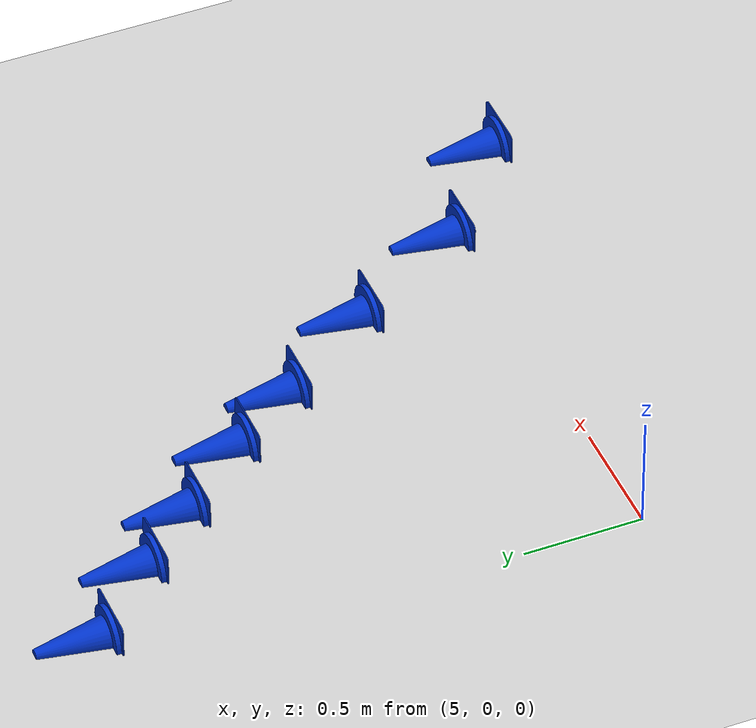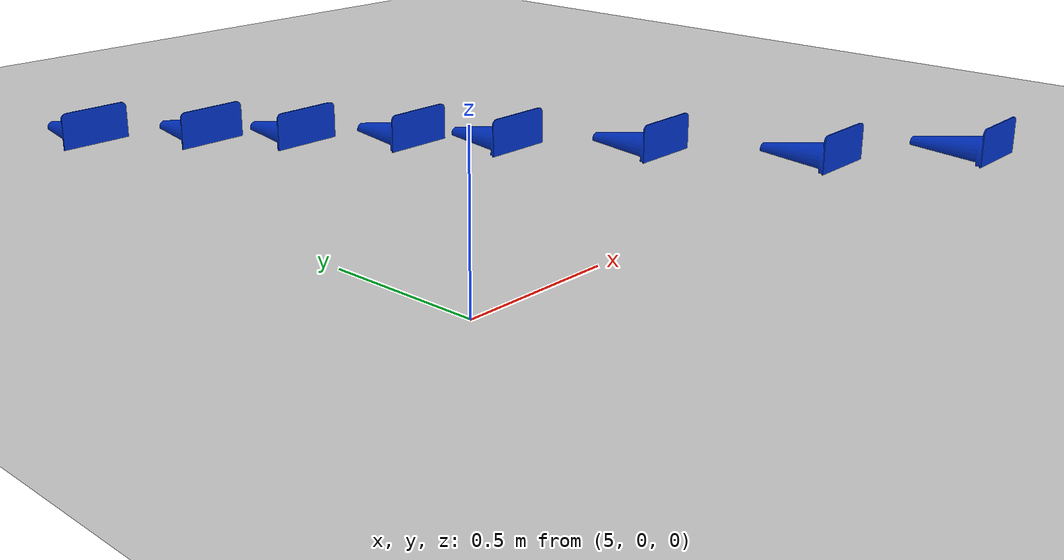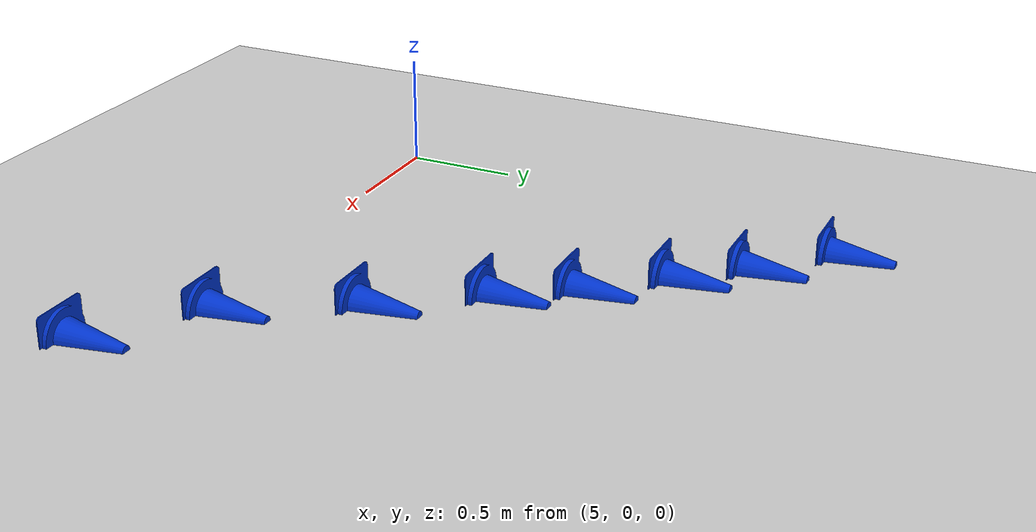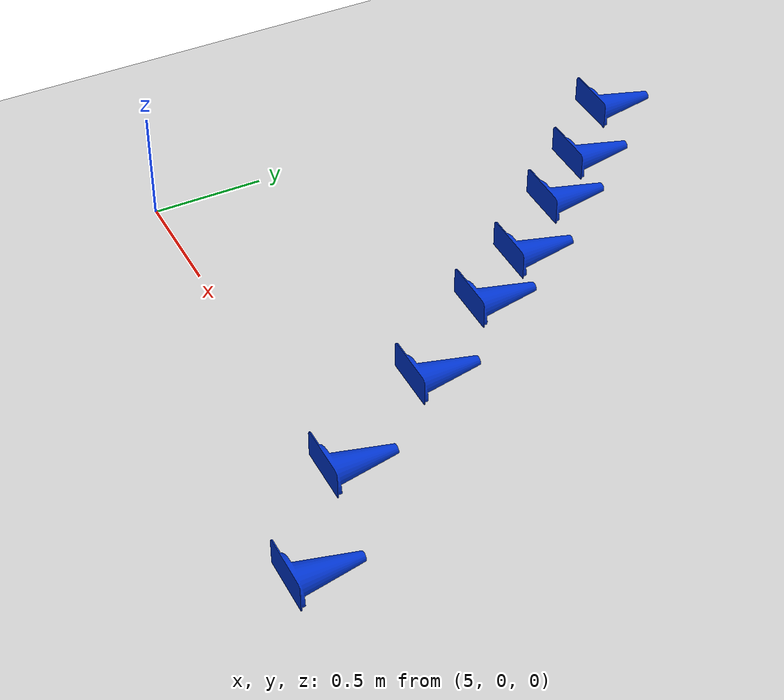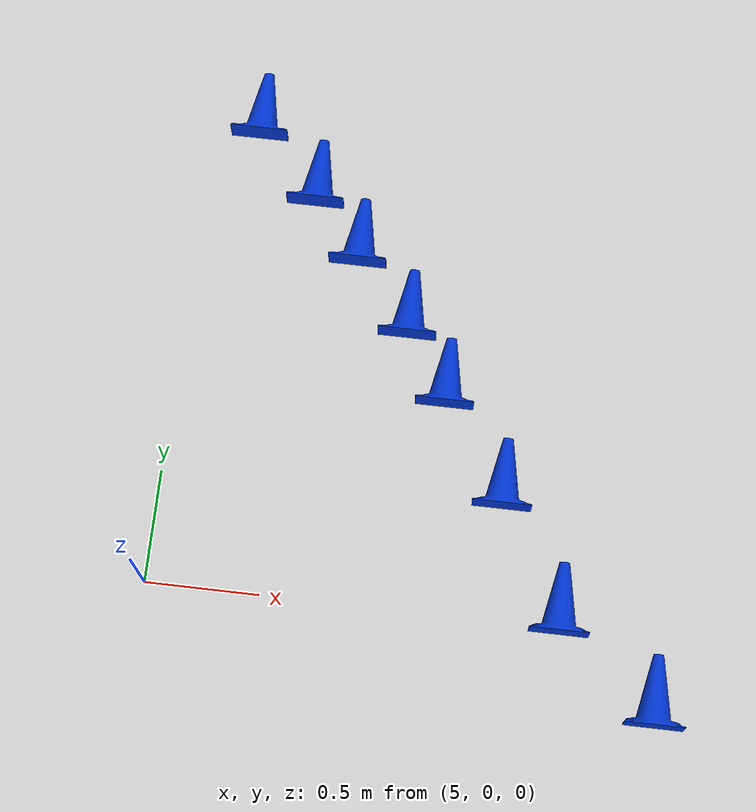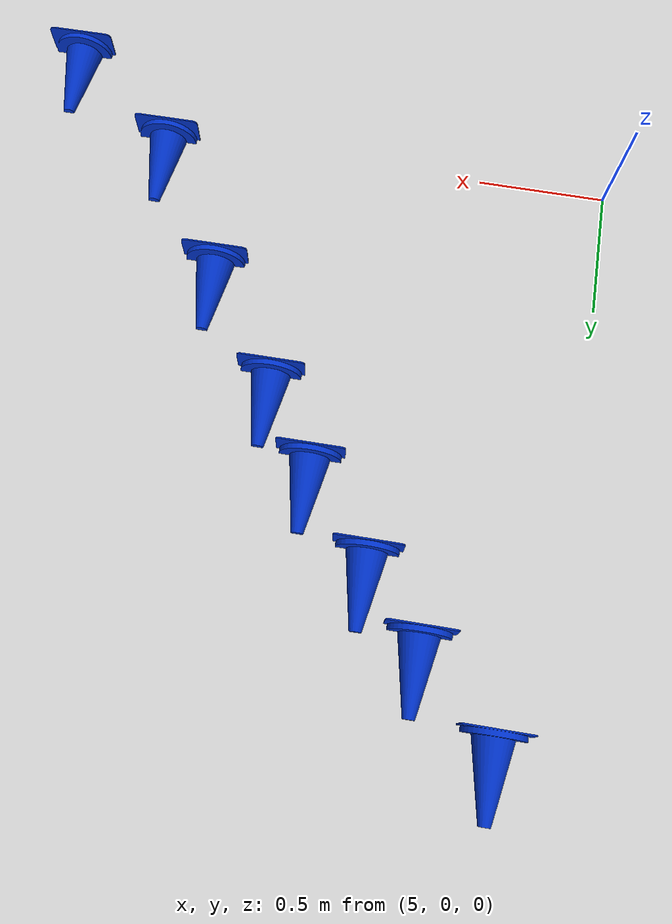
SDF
<sdf version="1.7">
 <world name="default">
  <model name="ground_plane">
   <static>1</static>
   <link name="link">
    <collision name="collision">
     <geometry><plane><normal>0 0 1</normal><size>100 100</size></plane></geometry>
     <surface><friction><ode><mu>100</mu><mu2>50</mu2></ode></friction></surface>
    </collision>
    <visual name="visual">
     <cast_shadows>0</cast_shadows>
     <geometry><plane><normal>0 0 1</normal><size>100 100</size></plane></geometry>
     <material>
      <script><uri>file://media/materials/scripts/gazebo.material</uri><name>Gazebo/Grey</name></script>
     </material>
    </visual>
   </link>
  </model>
  <model name="cone_yellow_24">
   <static>1</static>
   <link name="link">
    <visual name="visual">
     <geometry>
      <mesh><uri>model://cone_yellow/meshes/cone.stl</uri><scale>0.001 0.001 0.001</scale></mesh>
     </geometry>
     <material><ambient>1 0.82 0 1</ambient><diffuse>1 0.82 0 1</diffuse></material>
    </visual>
    <collision name="collision">
     <geometry>
      <mesh><uri>model://cone_yellow/meshes/cone.stl</uri><scale>0.001 0.001 0.001</scale></mesh>
     </geometry>
    </collision>
    <inertial>
     <mass>0.1</mass>
     <inertia><ixx>0.0001</ixx><iyy>0.0001</iyy><izz>0.0001</izz><ixy>0</ixy><ixz>0</ixz><iyz>0</iyz></inertia>
    </inertial>
   </link>
   <pose>5.1515 0.596885 0 0 -0 0</pose>
  </model>
  <model name="cone_yellow_25">
   <static>1</static>
   <link name="link">
    <visual name="visual">
     <geometry>
      <mesh><uri>model://cone_yellow/meshes/cone.stl</uri><scale>0.001 0.001 0.001</scale></mesh>
     </geometry>
     <material><ambient>1 0.82 0 1</ambient><diffuse>1 0.82 0 1</diffuse></material>
    </visual>
    <collision name="collision">
     <geometry>
      <mesh><uri>model://cone_yellow/meshes/cone.stl</uri><scale>0.001 0.001 0.001</scale></mesh>
     </geometry>
    </collision>
    <inertial>
     <mass>0.1</mass>
     <inertia><ixx>0.0001</ixx><iyy>0.0001</iyy><izz>0.0001</izz><ixy>0</ixy><ixz>0</ixz><iyz>0</iyz></inertia>
    </inertial>
   </link>
   <pose>5.49886 0.240595 0 0 -0 0</pose>
  </model>
  <model name="cone_blue_27">
   <static>1</static>
   <link name="link">
    <visual name="visual">
     <geometry><mesh><uri>model://cone_blue/meshes/cone.stl</uri><scale>0.001 0.001 0.001</scale></mesh></geometry>
     <material><ambient>0 0.2 0.8 1</ambient><diffuse>0 0.2 0.8 1</diffuse></material>
    </visual>
    <collision name="collision">
     <geometry><mesh><uri>model://cone_blue/meshes/cone.stl</uri><scale>0.001 0.001 0.001</scale></mesh></geometry>
    </collision>
    <inertial>
     <mass>0.1</mass>
     <inertia><ixx>0.0001</ixx><iyy>0.0001</iyy><izz>0.0001</izz><ixy>0</ixy><ixz>0</ixz><iyz>0</iyz></inertia>
    </inertial>
   </link>
   <pose>5.21867 2.13742 0 0 -0 0</pose>
  </model>
  <model name="cone_blue_28">
   <static>1</static>
   <link name="link">
    <visual name="visual">
     <geometry><mesh><uri>model://cone_blue/meshes/cone.stl</uri><scale>0.001 0.001 0.001</scale></mesh></geometry>
     <material><ambient>0 0.2 0.8 1</ambient><diffuse>0 0.2 0.8 1</diffuse></material>
    </visual>
    <collision name="collision">
     <geometry><mesh><uri>model://cone_blue/meshes/cone.stl</uri><scale>0.001 0.001 0.001</scale></mesh></geometry>
    </collision>
    <inertial>
     <mass>0.1</mass>
     <inertia><ixx>0.0001</ixx><iyy>0.0001</iyy><izz>0.0001</izz><ixy>0</ixy><ixz>0</ixz><iyz>0</iyz></inertia>
    </inertial>
   </link>
   <pose>5.51371 1.83791 0 0 -0 0</pose>
  </model>
  <model name="cone_blue_29">
   <static>1</static>
   <link name="link">
    <visual name="visual">
     <geometry><mesh><uri>model://cone_blue/meshes/cone.stl</uri><scale>0.001 0.001 0.001</scale></mesh></geometry>
     <material><ambient>0 0.2 0.8 1</ambient><diffuse>0 0.2 0.8 1</diffuse></material>
    </visual>
    <collision name="collision">
     <geometry><mesh><uri>model://cone_blue/meshes/cone.stl</uri><scale>0.001 0.001 0.001</scale></mesh></geometry>
    </collision>
    <inertial>
     <mass>0.1</mass>
     <inertia><ixx>0.0001</ixx><iyy>0.0001</iyy><izz>0.0001</izz><ixy>0</ixy><ixz>0</ixz><iyz>0</iyz></inertia>
    </inertial>
   </link>
   <pose>5.73875 1.57462 0 0 -0 0</pose>
  </model>
  <model name="cone_blue_30">
   <static>1</static>
   <link name="link">
    <visual name="visual">
     <geometry><mesh><uri>model://cone_blue/meshes/cone.stl</uri><scale>0.001 0.001 0.001</scale></mesh></geometry>
     <material><ambient>0 0.2 0.8 1</ambient><diffuse>0 0.2 0.8 1</diffuse></material>
    </visual>
    <collision name="collision">
     <geometry><mesh><uri>model://cone_blue/meshes/cone.stl</uri><scale>0.001 0.001 0.001</scale></mesh></geometry>
    </collision>
    <inertial>
     <mass>0.1</mass>
     <inertia><ixx>0.0001</ixx><iyy>0.0001</iyy><izz>0.0001</izz><ixy>0</ixy><ixz>0</ixz><iyz>0</iyz></inertia>
    </inertial>
   </link>
   <pose>5.99994 1.26024 0 0 -0 0</pose>
  </model>
  <model name="cone_blue_31">
   <static>1</static>
   <link name="link">
    <visual name="visual">
     <geometry><mesh><uri>model://cone_blue/meshes/cone.stl</uri><scale>0.001 0.001 0.001</scale></mesh></geometry>
     <material><ambient>0 0.2 0.8 1</ambient><diffuse>0 0.2 0.8 1</diffuse></material>
    </visual>
    <collision name="collision">
     <geometry><mesh><uri>model://cone_blue/meshes/cone.stl</uri><scale>0.001 0.001 0.001</scale></mesh></geometry>
    </collision>
    <inertial>
     <mass>0.1</mass>
     <inertia><ixx>0.0001</ixx><iyy>0.0001</iyy><izz>0.0001</izz><ixy>0</ixy><ixz>0</ixz><iyz>0</iyz></inertia>
    </inertial>
   </link>
   <pose>6.20111 0.959512 0 0 -0 0</pose>
  </model>
  <model name="cone_blue_32">
   <static>1</static>
   <link name="link">
    <visual name="visual">
     <geometry><mesh><uri>model://cone_blue/meshes/cone.stl</uri><scale>0.001 0.001 0.001</scale></mesh></geometry>
     <material><ambient>0 0.2 0.8 1</ambient><diffuse>0 0.2 0.8 1</diffuse></material>
    </visual>
    <collision name="collision">
     <geometry><mesh><uri>model://cone_blue/meshes/cone.stl</uri><scale>0.001 0.001 0.001</scale></mesh></geometry>
    </collision>
    <inertial>
     <mass>0.1</mass>
     <inertia><ixx>0.0001</ixx><iyy>0.0001</iyy><izz>0.0001</izz><ixy>0</ixy><ixz>0</ixz><iyz>0</iyz></inertia>
    </inertial>
   </link>
   <pose>6.50077 0.528082 0 0 -0 0</pose>
  </model>
  <model name="cone_blue_33">
   <static>1</static>
   <link name="link">
    <visual name="visual">
     <geometry><mesh><uri>model://cone_blue/meshes/cone.stl</uri><scale>0.001 0.001 0.001</scale></mesh></geometry>
     <material><ambient>0 0.2 0.8 1</ambient><diffuse>0 0.2 0.8 1</diffuse></material>
    </visual>
    <collision name="collision">
     <geometry><mesh><uri>model://cone_blue/meshes/cone.stl</uri><scale>0.001 0.001 0.001</scale></mesh></geometry>
    </collision>
    <inertial>
     <mass>0.1</mass>
     <inertia><ixx>0.0001</ixx><iyy>0.0001</iyy><izz>0.0001</izz><ixy>0</ixy><ixz>0</ixz><iyz>0</iyz></inertia>
    </inertial>
   </link>
   <pose>6.80171 0.003294 0 0 -0 0</pose>
  </model>
  <model name="cone_blue_34">
   <static>1</static>
   <link name="link">
    <visual name="visual">
     <geometry><mesh><uri>model://cone_blue/meshes/cone.stl</uri><scale>0.001 0.001 0.001</scale></mesh></geometry>
     <material><ambient>0 0.2 0.8 1</ambient><diffuse>0 0.2 0.8 1</diffuse></material>
    </visual>
    <collision name="collision">
     <geometry><mesh><uri>model://cone_blue/meshes/cone.stl</uri><scale>0.001 0.001 0.001</scale></mesh></geometry>
    </collision>
    <inertial>
     <mass>0.1</mass>
     <inertia><ixx>0.0001</ixx><iyy>0.0001</iyy><izz>0.0001</izz><ixy>0</ixy><ixz>0</ixz><iyz>0</iyz></inertia>
    </inertial>
   </link>
   <pose>7.24182 -0.35107 0 0 -0 0</pose>
  </model>
  <model name="cone_yellow_26">
   <static>1</static>
   <link name="link">
    <visual name="visual">
     <geometry>
      <mesh><uri>model://cone_yellow/meshes/cone.stl</uri><scale>0.001 0.001 0.001</scale></mesh>
     </geometry>
     <material><ambient>1 0.82 0 1</ambient><diffuse>1 0.82 0 1</diffuse></material>
    </visual>
    <collision name="collision">
     <geometry>
      <mesh><uri>model://cone_yellow/meshes/cone.stl</uri><scale>0.001 0.001 0.001</scale></mesh>
     </geometry>
    </collision>
    <inertial>
     <mass>0.1</mass>
     <inertia><ixx>0.0001</ixx><iyy>0.0001</iyy><izz>0.0001</izz><ixy>0</ixy><ixz>0</ixz><iyz>0</iyz></inertia>
    </inertial>
   </link>
   <pose>5.70761 -0.137166 0 0 -0 0</pose>
  </model>
  <model name="cone_yellow_27">
   <static>1</static>
   <link name="link">
    <visual name="visual">
     <geometry>
      <mesh><uri>model://cone_yellow/meshes/cone.stl</uri><scale>0.001 0.001 0.001</scale></mesh>
     </geometry>
     <material><ambient>1 0.82 0 1</ambient><diffuse>1 0.82 0 1</diffuse></material>
    </visual>
    <collision name="collision">
     <geometry>
      <mesh><uri>model://cone_yellow/meshes/cone.stl</uri><scale>0.001 0.001 0.001</scale></mesh>
     </geometry>
    </collision>
    <inertial>
     <mass>0.1</mass>
     <inertia><ixx>0.0001</ixx><iyy>0.0001</iyy><izz>0.0001</izz><ixy>0</ixy><ixz>0</ixz><iyz>0</iyz></inertia>
    </inertial>
   </link>
   <pose>5.95894 -0.670545 0 0 -0 0</pose>
  </model>
 </world>
</sdf>
